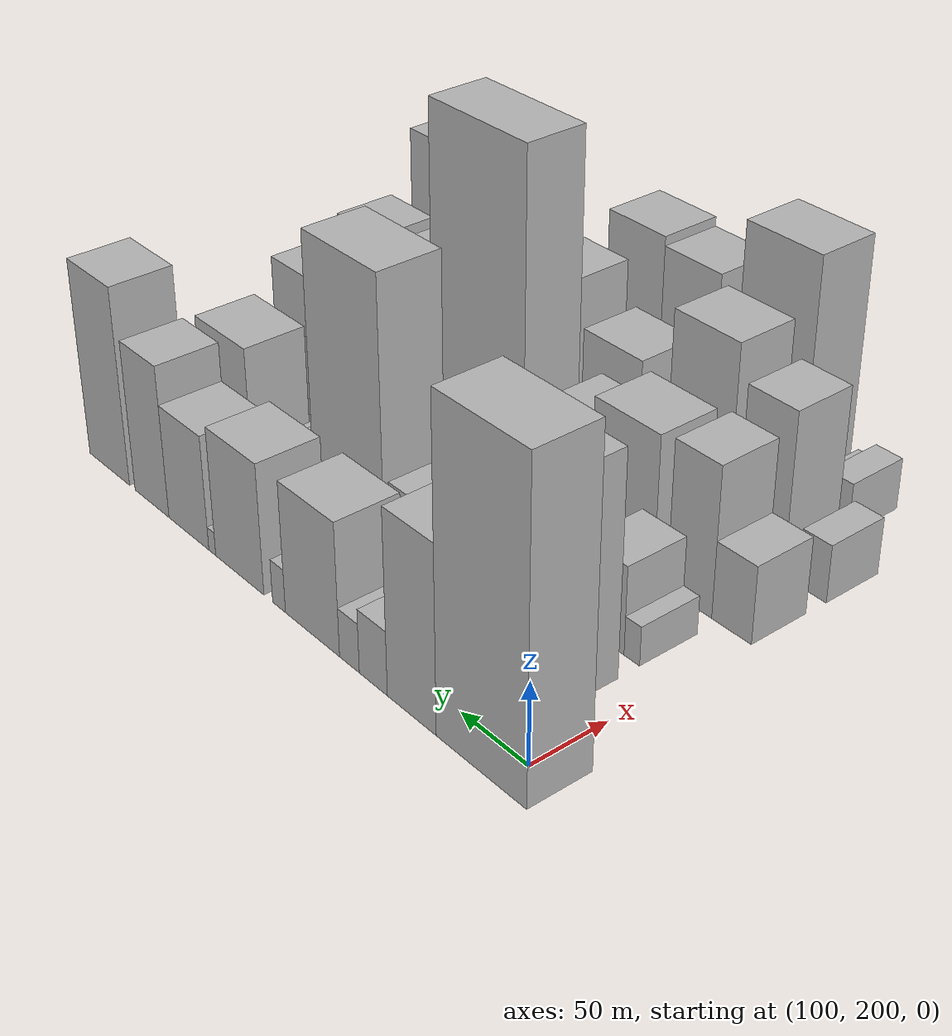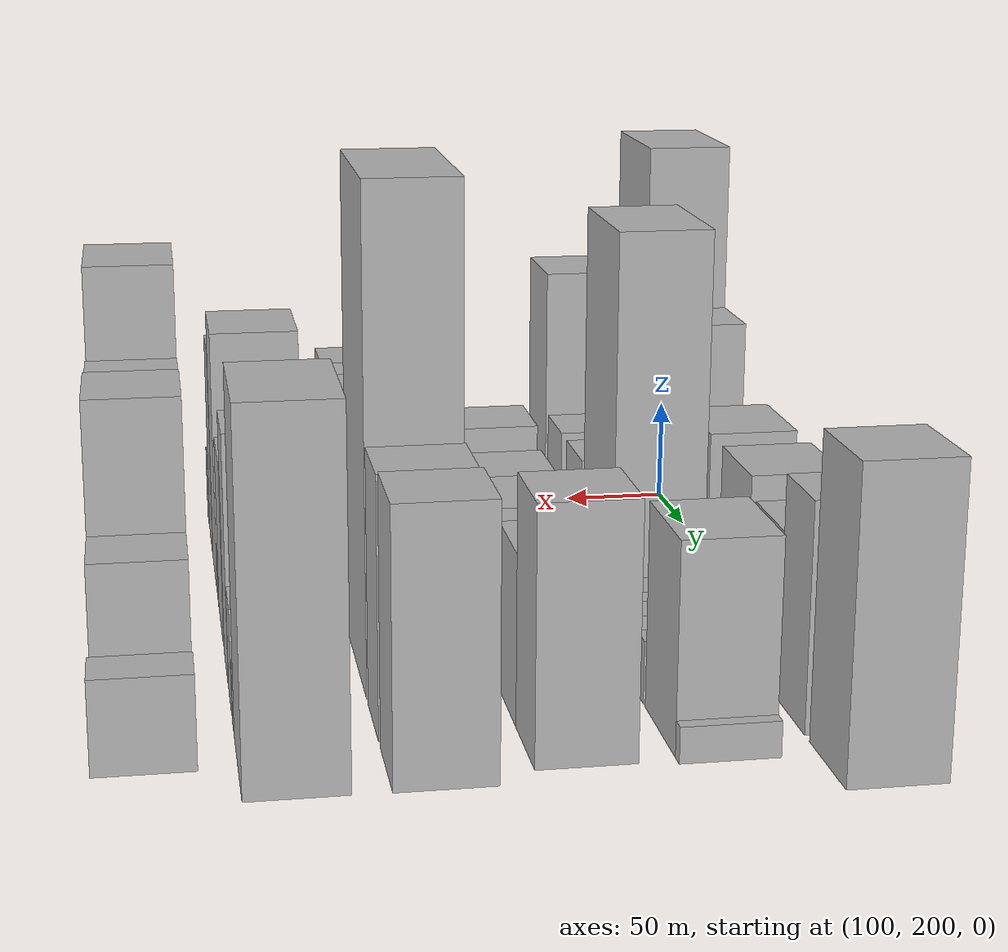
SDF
<sdf version="1.6">
 <world name="default">
  <model name="building_28">
   <static>1</static>
   <pose>100.0000 211.1221 0 0.000000 0.000000 0.000000</pose>
   <link name="link">
    <pose>0 0 96.00 0 0 0</pose>
    <collision name="collision"><geometry><box><size>40.0000 65.5950 192.0000</size></box></geometry></collision>
    <visual name="visual">
     <cast_shadows>0</cast_shadows>
     <geometry><box><size>40.0000 65.5950 192.0000</size></box></geometry>
     <material>
      <script>
       <uri>model://HANNAS_wall/materials/scripts</uri>
       <uri>model://HANNAS_wall/materials/textures</uri>
       <name>vrc/HANNAS_wall</name>
      </script>
     </material>
    </visual>
   </link>
  </model>
  <model name="building_29">
   <static>1</static>
   <pose>100.0000 262.9769 0 0.000000 0.000000 0.000000</pose>
   <link name="link">
    <pose>0 0 55.50 0 0 0</pose>
    <collision name="collision"><geometry><box><size>40.0000 38.1147 111.0000</size></box></geometry></collision>
    <visual name="visual">
     <cast_shadows>0</cast_shadows>
     <geometry><box><size>40.0000 38.1147 111.0000</size></box></geometry>
     <material>
      <script>
       <uri>model://HANNAS_wall/materials/scripts</uri>
       <uri>model://HANNAS_wall/materials/textures</uri>
       <name>vrc/HANNAS_wall</name>
      </script>
     </material>
    </visual>
   </link>
  </model>
  <model name="building_30">
   <static>1</static>
   <pose>100.0000 293.4350 0 0.000000 0.000000 0.000000</pose>
   <link name="link">
    <pose>0 0 19.50 0 0 0</pose>
    <collision name="collision"><geometry><box><size>40.0000 22.8015 39.0000</size></box></geometry></collision>
    <visual name="visual">
     <cast_shadows>0</cast_shadows>
     <geometry><box><size>40.0000 22.8015 39.0000</size></box></geometry>
     <material>
      <script>
       <uri>model://HANNAS_wall/materials/scripts</uri>
       <uri>model://HANNAS_wall/materials/textures</uri>
       <name>vrc/HANNAS_wall</name>
      </script>
     </material>
    </visual>
   </link>
  </model>
  <model name="building_31">
   <static>1</static>
   <pose>100.0000 313.0862 0 0.000000 0.000000 0.000000</pose>
   <link name="link">
    <pose>0 0 15.00 0 0 0</pose>
    <collision name="collision"><geometry><box><size>40.0000 16.5010 30.0000</size></box></geometry></collision>
    <visual name="visual">
     <cast_shadows>0</cast_shadows>
     <geometry><box><size>40.0000 16.5010 30.0000</size></box></geometry>
     <material>
      <script>
       <uri>model://HANNAS_wall/materials/scripts</uri>
       <uri>model://HANNAS_wall/materials/textures</uri>
       <name>vrc/HANNAS_wall</name>
      </script>
     </material>
    </visual>
   </link>
  </model>
  <model name="building_32">
   <static>1</static>
   <pose>100.0000 344.8873 0 0.000000 0.000000 0.000000</pose>
   <link name="link">
    <pose>0 0 40.50 0 0 0</pose>
    <collision name="collision"><geometry><box><size>40.0000 47.1013 81.0000</size></box></geometry></collision>
    <visual name="visual">
     <cast_shadows>0</cast_shadows>
     <geometry><box><size>40.0000 47.1013 81.0000</size></box></geometry>
     <material>
      <script>
       <uri>model://HANNAS_wall/materials/scripts</uri>
       <uri>model://HANNAS_wall/materials/textures</uri>
       <name>vrc/HANNAS_wall</name>
      </script>
     </material>
    </visual>
   </link>
  </model>
  <model name="building_33">
   <static>1</static>
   <pose>100.0000 374.2250 0 0.000000 0.000000 0.000000</pose>
   <link name="link">
    <pose>0 0 13.50 0 0 0</pose>
    <collision name="collision"><geometry><box><size>40.0000 11.5741 27.0000</size></box></geometry></collision>
    <visual name="visual">
     <cast_shadows>0</cast_shadows>
     <geometry><box><size>40.0000 11.5741 27.0000</size></box></geometry>
     <material>
      <script>
       <uri>model://HANNAS_wall/materials/scripts</uri>
       <uri>model://HANNAS_wall/materials/textures</uri>
       <name>vrc/HANNAS_wall</name>
      </script>
     </material>
    </visual>
   </link>
  </model>
  <model name="building_34">
   <static>1</static>
   <pose>100.0000 410.7948 0 0.000000 0.000000 0.000000</pose>
   <link name="link">
    <pose>0 0 40.50 0 0 0</pose>
    <collision name="collision"><geometry><box><size>40.0000 45.5656 81.0000</size></box></geometry></collision>
    <visual name="visual">
     <cast_shadows>0</cast_shadows>
     <geometry><box><size>40.0000 45.5656 81.0000</size></box></geometry>
     <material>
      <script>
       <uri>model://HANNAS_wall/materials/scripts</uri>
       <uri>model://HANNAS_wall/materials/textures</uri>
       <name>vrc/HANNAS_wall</name>
      </script>
     </material>
    </visual>
   </link>
  </model>
  <model name="building_35">
   <static>1</static>
   <pose>100.0000 436.9361 0 0.000000 0.000000 0.000000</pose>
   <link name="link">
    <pose>0 0 7.50 0 0 0</pose>
    <collision name="collision"><geometry><box><size>40.0000 6.7169 15.0000</size></box></geometry></collision>
    <visual name="visual">
     <cast_shadows>0</cast_shadows>
     <geometry><box><size>40.0000 6.7169 15.0000</size></box></geometry>
     <material>
      <script>
       <uri>model://HANNAS_wall/materials/scripts</uri>
       <uri>model://HANNAS_wall/materials/textures</uri>
       <name>vrc/HANNAS_wall</name>
      </script>
     </material>
    </visual>
   </link>
  </model>
  <model name="building_36">
   <static>1</static>
   <pose>100.0000 460.3819 0 0.000000 0.000000 0.000000</pose>
   <link name="link">
    <pose>0 0 36.00 0 0 0</pose>
    <collision name="collision"><geometry><box><size>40.0000 40.1748 72.0000</size></box></geometry></collision>
    <visual name="visual">
     <cast_shadows>0</cast_shadows>
     <geometry><box><size>40.0000 40.1748 72.0000</size></box></geometry>
     <material>
      <script>
       <uri>model://HANNAS_wall/materials/scripts</uri>
       <uri>model://HANNAS_wall/materials/textures</uri>
       <name>vrc/HANNAS_wall</name>
      </script>
     </material>
    </visual>
   </link>
  </model>
  <model name="building_37">
   <static>1</static>
   <pose>100.0000 498.3153 0 0.000000 0.000000 0.000000</pose>
   <link name="link">
    <pose>0 0 48.00 0 0 0</pose>
    <collision name="collision"><geometry><box><size>40.0000 35.6922 96.0000</size></box></geometry></collision>
    <visual name="visual">
     <cast_shadows>0</cast_shadows>
     <geometry><box><size>40.0000 35.6922 96.0000</size></box></geometry>
     <material>
      <script>
       <uri>model://HANNAS_wall/materials/scripts</uri>
       <uri>model://HANNAS_wall/materials/textures</uri>
       <name>vrc/HANNAS_wall</name>
      </script>
     </material>
    </visual>
   </link>
  </model>
  <model name="building_38">
   <static>1</static>
   <pose>100.0000 544.0943 0 0.000000 0.000000 0.000000</pose>
   <link name="link">
    <pose>0 0 63.00 0 0 0</pose>
    <collision name="collision"><geometry><box><size>40.0000 43.8658 126.0000</size></box></geometry></collision>
    <visual name="visual">
     <cast_shadows>0</cast_shadows>
     <geometry><box><size>40.0000 43.8658 126.0000</size></box></geometry>
     <material>
      <script>
       <uri>model://HANNAS_wall/materials/scripts</uri>
       <uri>model://HANNAS_wall/materials/textures</uri>
       <name>vrc/HANNAS_wall</name>
      </script>
     </material>
    </visual>
   </link>
  </model>
  <model name="building_78">
   <static>1</static>
   <pose>155.0000 242.6179 0 0.000000 0.000000 0.000000</pose>
   <link name="link">
    <pose>0 0 67.50 0 0 0</pose>
    <collision name="collision"><geometry><box><size>40.0000 44.5544 135.0000</size></box></geometry></collision>
    <visual name="visual">
     <cast_shadows>0</cast_shadows>
     <geometry><box><size>40.0000 44.5544 135.0000</size></box></geometry>
     <material>
      <script>
       <uri>model://HANNAS_wall/materials/scripts</uri>
       <uri>model://HANNAS_wall/materials/textures</uri>
       <name>vrc/HANNAS_wall</name>
      </script>
     </material>
    </visual>
   </link>
  </model>
  <model name="building_79">
   <static>1</static>
   <pose>155.0000 287.6054 0 0.000000 0.000000 0.000000</pose>
   <link name="link">
    <pose>0 0 33.00 0 0 0</pose>
    <collision name="collision"><geometry><box><size>40.0000 33.4206 66.0000</size></box></geometry></collision>
    <visual name="visual">
     <cast_shadows>0</cast_shadows>
     <geometry><box><size>40.0000 33.4206 66.0000</size></box></geometry>
     <material>
      <script>
       <uri>model://HANNAS_wall/materials/scripts</uri>
       <uri>model://HANNAS_wall/materials/textures</uri>
       <name>vrc/HANNAS_wall</name>
      </script>
     </material>
    </visual>
   </link>
  </model>
  <model name="building_80">
   <static>1</static>
   <pose>155.0000 311.9925 0 0.000000 0.000000 0.000000</pose>
   <link name="link">
    <pose>0 0 10.50 0 0 0</pose>
    <collision name="collision"><geometry><box><size>40.0000 9.3537 21.0000</size></box></geometry></collision>
    <visual name="visual">
     <cast_shadows>0</cast_shadows>
     <geometry><box><size>40.0000 9.3537 21.0000</size></box></geometry>
     <material>
      <script>
       <uri>model://HANNAS_wall/materials/scripts</uri>
       <uri>model://HANNAS_wall/materials/textures</uri>
       <name>vrc/HANNAS_wall</name>
      </script>
     </material>
    </visual>
   </link>
  </model>
  <model name="building_81">
   <static>1</static>
   <pose>155.0000 333.8412 0 0.000000 0.000000 0.000000</pose>
   <link name="link">
    <pose>0 0 33.00 0 0 0</pose>
    <collision name="collision"><geometry><box><size>40.0000 34.3437 66.0000</size></box></geometry></collision>
    <visual name="visual">
     <cast_shadows>0</cast_shadows>
     <geometry><box><size>40.0000 34.3437 66.0000</size></box></geometry>
     <material>
      <script>
       <uri>model://HANNAS_wall/materials/scripts</uri>
       <uri>model://HANNAS_wall/materials/textures</uri>
       <name>vrc/HANNAS_wall</name>
      </script>
     </material>
    </visual>
   </link>
  </model>
  <model name="building_82">
   <static>1</static>
   <pose>155.0000 387.0578 0 0.000000 0.000000 0.000000</pose>
   <link name="link">
    <pose>0 0 91.50 0 0 0</pose>
    <collision name="collision"><geometry><box><size>40.0000 62.0895 183.0000</size></box></geometry></collision>
    <visual name="visual">
     <cast_shadows>0</cast_shadows>
     <geometry><box><size>40.0000 62.0895 183.0000</size></box></geometry>
     <material>
      <script>
       <uri>model://HANNAS_wall/materials/scripts</uri>
       <uri>model://HANNAS_wall/materials/textures</uri>
       <name>vrc/HANNAS_wall</name>
      </script>
     </material>
    </visual>
   </link>
  </model>
  <model name="building_83">
   <static>1</static>
   <pose>155.0000 427.3714 0 0.000000 0.000000 0.000000</pose>
   <link name="link">
    <pose>0 0 16.50 0 0 0</pose>
    <collision name="collision"><geometry><box><size>40.0000 18.5377 33.0000</size></box></geometry></collision>
    <visual name="visual">
     <cast_shadows>0</cast_shadows>
     <geometry><box><size>40.0000 18.5377 33.0000</size></box></geometry>
     <material>
      <script>
       <uri>model://HANNAS_wall/materials/scripts</uri>
       <uri>model://HANNAS_wall/materials/textures</uri>
       <name>vrc/HANNAS_wall</name>
      </script>
     </material>
    </visual>
   </link>
  </model>
  <model name="building_84">
   <static>1</static>
   <pose>155.0000 455.3197 0 0.000000 0.000000 0.000000</pose>
   <link name="link">
    <pose>0 0 16.50 0 0 0</pose>
    <collision name="collision"><geometry><box><size>40.0000 17.3588 33.0000</size></box></geometry></collision>
    <visual name="visual">
     <cast_shadows>0</cast_shadows>
     <geometry><box><size>40.0000 17.3588 33.0000</size></box></geometry>
     <material>
      <script>
       <uri>model://HANNAS_wall/materials/scripts</uri>
       <uri>model://HANNAS_wall/materials/textures</uri>
       <name>vrc/HANNAS_wall</name>
      </script>
     </material>
    </visual>
   </link>
  </model>
  <model name="building_85">
   <static>1</static>
   <pose>155.0000 470.2875 0 0.000000 0.000000 0.000000</pose>
   <link name="link">
    <pose>0 0 13.50 0 0 0</pose>
    <collision name="collision"><geometry><box><size>40.0000 12.5769 27.0000</size></box></geometry></collision>
    <visual name="visual">
     <cast_shadows>0</cast_shadows>
     <geometry><box><size>40.0000 12.5769 27.0000</size></box></geometry>
     <material>
      <script>
       <uri>model://HANNAS_wall/materials/scripts</uri>
       <uri>model://HANNAS_wall/materials/textures</uri>
       <name>vrc/HANNAS_wall</name>
      </script>
     </material>
    </visual>
   </link>
  </model>
  <model name="building_86">
   <static>1</static>
   <pose>155.0000 504.1229 0 0.000000 0.000000 0.000000</pose>
   <link name="link">
    <pose>0 0 43.50 0 0 0</pose>
    <collision name="collision"><geometry><box><size>40.0000 49.0937 87.0000</size></box></geometry></collision>
    <visual name="visual">
     <cast_shadows>0</cast_shadows>
     <geometry><box><size>40.0000 49.0937 87.0000</size></box></geometry>
     <material>
      <script>
       <uri>model://HANNAS_wall/materials/scripts</uri>
       <uri>model://HANNAS_wall/materials/textures</uri>
       <name>vrc/HANNAS_wall</name>
      </script>
     </material>
    </visual>
   </link>
  </model>
  <model name="building_87">
   <static>1</static>
   <pose>155.0000 531.7247 0 0.000000 0.000000 0.000000</pose>
   <link name="link">
    <pose>0 0 7.50 0 0 0</pose>
    <collision name="collision"><geometry><box><size>40.0000 6.1100 15.0000</size></box></geometry></collision>
    <visual name="visual">
     <cast_shadows>0</cast_shadows>
     <geometry><box><size>40.0000 6.1100 15.0000</size></box></geometry>
     <material>
      <script>
       <uri>model://HANNAS_wall/materials/scripts</uri>
       <uri>model://HANNAS_wall/materials/textures</uri>
       <name>vrc/HANNAS_wall</name>
      </script>
     </material>
    </visual>
   </link>
  </model>
  <model name="building_132">
   <static>1</static>
   <pose>210.0000 226.4200 0 0.000000 0.000000 0.000000</pose>
   <link name="link">
    <pose>0 0 12.00 0 0 0</pose>
    <collision name="collision"><geometry><box><size>40.0000 11.3285 24.0000</size></box></geometry></collision>
    <visual name="visual">
     <cast_shadows>0</cast_shadows>
     <geometry><box><size>40.0000 11.3285 24.0000</size></box></geometry>
     <material>
      <script>
       <uri>model://HANNAS_wall/materials/scripts</uri>
       <uri>model://HANNAS_wall/materials/textures</uri>
       <name>vrc/HANNAS_wall</name>
      </script>
     </material>
    </visual>
   </link>
  </model>
  <model name="building_133">
   <static>1</static>
   <pose>210.0000 247.9528 0 0.000000 0.000000 0.000000</pose>
   <link name="link">
    <pose>0 0 27.00 0 0 0</pose>
    <collision name="collision"><geometry><box><size>40.0000 31.7370 54.0000</size></box></geometry></collision>
    <visual name="visual">
     <cast_shadows>0</cast_shadows>
     <geometry><box><size>40.0000 31.7370 54.0000</size></box></geometry>
     <material>
      <script>
       <uri>model://HANNAS_wall/materials/scripts</uri>
       <uri>model://HANNAS_wall/materials/textures</uri>
       <name>vrc/HANNAS_wall</name>
      </script>
     </material>
    </visual>
   </link>
  </model>
  <model name="building_134">
   <static>1</static>
   <pose>210.0000 273.6645 0 0.000000 0.000000 0.000000</pose>
   <link name="link">
    <pose>0 0 16.50 0 0 0</pose>
    <collision name="collision"><geometry><box><size>40.0000 19.6864 33.0000</size></box></geometry></collision>
    <visual name="visual">
     <cast_shadows>0</cast_shadows>
     <geometry><box><size>40.0000 19.6864 33.0000</size></box></geometry>
     <material>
      <script>
       <uri>model://HANNAS_wall/materials/scripts</uri>
       <uri>model://HANNAS_wall/materials/textures</uri>
       <name>vrc/HANNAS_wall</name>
      </script>
     </material>
    </visual>
   </link>
  </model>
  <model name="building_135">
   <static>1</static>
   <pose>210.0000 302.5723 0 0.000000 0.000000 0.000000</pose>
   <link name="link">
    <pose>0 0 37.50 0 0 0</pose>
    <collision name="collision"><geometry><box><size>40.0000 38.1293 75.0000</size></box></geometry></collision>
    <visual name="visual">
     <cast_shadows>0</cast_shadows>
     <geometry><box><size>40.0000 38.1293 75.0000</size></box></geometry>
     <material>
      <script>
       <uri>model://HANNAS_wall/materials/scripts</uri>
       <uri>model://HANNAS_wall/materials/textures</uri>
       <name>vrc/HANNAS_wall</name>
      </script>
     </material>
    </visual>
   </link>
  </model>
  <model name="building_136">
   <static>1</static>
   <pose>210.0000 350.0573 0 0.000000 0.000000 0.000000</pose>
   <link name="link">
    <pose>0 0 33.00 0 0 0</pose>
    <collision name="collision"><geometry><box><size>40.0000 38.8407 66.0000</size></box></geometry></collision>
    <visual name="visual">
     <cast_shadows>0</cast_shadows>
     <geometry><box><size>40.0000 38.8407 66.0000</size></box></geometry>
     <material>
      <script>
       <uri>model://HANNAS_wall/materials/scripts</uri>
       <uri>model://HANNAS_wall/materials/textures</uri>
       <name>vrc/HANNAS_wall</name>
      </script>
     </material>
    </visual>
   </link>
  </model>
  <model name="building_137">
   <static>1</static>
   <pose>210.0000 392.8397 0 0.000000 0.000000 0.000000</pose>
   <link name="link">
    <pose>0 0 27.00 0 0 0</pose>
    <collision name="collision"><geometry><box><size>40.0000 28.7243 54.0000</size></box></geometry></collision>
    <visual name="visual">
     <cast_shadows>0</cast_shadows>
     <geometry><box><size>40.0000 28.7243 54.0000</size></box></geometry>
     <material>
      <script>
       <uri>model://HANNAS_wall/materials/scripts</uri>
       <uri>model://HANNAS_wall/materials/textures</uri>
       <name>vrc/HANNAS_wall</name>
      </script>
     </material>
    </visual>
   </link>
  </model>
  <model name="building_138">
   <static>1</static>
   <pose>210.0000 410.2564 0 0.000000 0.000000 0.000000</pose>
   <link name="link">
    <pose>0 0 7.50 0 0 0</pose>
    <collision name="collision"><geometry><box><size>40.0000 6.1091 15.0000</size></box></geometry></collision>
    <visual name="visual">
     <cast_shadows>0</cast_shadows>
     <geometry><box><size>40.0000 6.1091 15.0000</size></box></geometry>
     <material>
      <script>
       <uri>model://HANNAS_wall/materials/scripts</uri>
       <uri>model://HANNAS_wall/materials/textures</uri>
       <name>vrc/HANNAS_wall</name>
      </script>
     </material>
    </visual>
   </link>
  </model>
  <model name="building_139">
   <static>1</static>
   <pose>210.0000 427.1745 0 0.000000 0.000000 0.000000</pose>
   <link name="link">
    <pose>0 0 24.00 0 0 0</pose>
    <collision name="collision"><geometry><box><size>40.0000 27.7270 48.0000</size></box></geometry></collision>
    <visual name="visual">
     <cast_shadows>0</cast_shadows>
     <geometry><box><size>40.0000 27.7270 48.0000</size></box></geometry>
     <material>
      <script>
       <uri>model://HANNAS_wall/materials/scripts</uri>
       <uri>model://HANNAS_wall/materials/textures</uri>
       <name>vrc/HANNAS_wall</name>
      </script>
     </material>
    </visual>
   </link>
  </model>
  <model name="building_140">
   <static>1</static>
   <pose>210.0000 445.7122 0 0.000000 0.000000 0.000000</pose>
   <link name="link">
    <pose>0 0 10.50 0 0 0</pose>
    <collision name="collision"><geometry><box><size>40.0000 9.3484 21.0000</size></box></geometry></collision>
    <visual name="visual">
     <cast_shadows>0</cast_shadows>
     <geometry><box><size>40.0000 9.3484 21.0000</size></box></geometry>
     <material>
      <script>
       <uri>model://HANNAS_wall/materials/scripts</uri>
       <uri>model://HANNAS_wall/materials/textures</uri>
       <name>vrc/HANNAS_wall</name>
      </script>
     </material>
    </visual>
   </link>
  </model>
  <model name="building_141">
   <static>1</static>
   <pose>210.0000 471.0265 0 0.000000 0.000000 0.000000</pose>
   <link name="link">
    <pose>0 0 36.00 0 0 0</pose>
    <collision name="collision"><geometry><box><size>40.0000 41.2801 72.0000</size></box></geometry></collision>
    <visual name="visual">
     <cast_shadows>0</cast_shadows>
     <geometry><box><size>40.0000 41.2801 72.0000</size></box></geometry>
     <material>
      <script>
       <uri>model://HANNAS_wall/materials/scripts</uri>
       <uri>model://HANNAS_wall/materials/textures</uri>
       <name>vrc/HANNAS_wall</name>
      </script>
     </material>
    </visual>
   </link>
  </model>
  <model name="building_142">
   <static>1</static>
   <pose>210.0000 511.8032 0 0.000000 0.000000 0.000000</pose>
   <link name="link">
    <pose>0 0 52.50 0 0 0</pose>
    <collision name="collision"><geometry><box><size>40.0000 40.2734 105.0000</size></box></geometry></collision>
    <visual name="visual">
     <cast_shadows>0</cast_shadows>
     <geometry><box><size>40.0000 40.2734 105.0000</size></box></geometry>
     <material>
      <script>
       <uri>model://HANNAS_wall/materials/scripts</uri>
       <uri>model://HANNAS_wall/materials/textures</uri>
       <name>vrc/HANNAS_wall</name>
      </script>
     </material>
    </visual>
   </link>
  </model>
  <model name="building_184">
   <static>1</static>
   <pose>265.0000 211.4178 0 0.000000 0.000000 0.000000</pose>
   <link name="link">
    <pose>0 0 24.00 0 0 0</pose>
    <collision name="collision"><geometry><box><size>40.0000 28.0167 48.0000</size></box></geometry></collision>
    <visual name="visual">
     <cast_shadows>0</cast_shadows>
     <geometry><box><size>40.0000 28.0167 48.0000</size></box></geometry>
     <material>
      <script>
       <uri>model://HANNAS_wall/materials/scripts</uri>
       <uri>model://HANNAS_wall/materials/textures</uri>
       <name>vrc/HANNAS_wall</name>
      </script>
     </material>
    </visual>
   </link>
  </model>
  <model name="building_185">
   <static>1</static>
   <pose>265.0000 241.8410 0 0.000000 0.000000 0.000000</pose>
   <link name="link">
    <pose>0 0 46.50 0 0 0</pose>
    <collision name="collision"><geometry><box><size>40.0000 32.8297 93.0000</size></box></geometry></collision>
    <visual name="visual">
     <cast_shadows>0</cast_shadows>
     <geometry><box><size>40.0000 32.8297 93.0000</size></box></geometry>
     <material>
      <script>
       <uri>model://HANNAS_wall/materials/scripts</uri>
       <uri>model://HANNAS_wall/materials/textures</uri>
       <name>vrc/HANNAS_wall</name>
      </script>
     </material>
    </visual>
   </link>
  </model>
  <model name="building_186">
   <static>1</static>
   <pose>265.0000 292.9318 0 0.000000 0.000000 0.000000</pose>
   <link name="link">
    <pose>0 0 45.00 0 0 0</pose>
    <collision name="collision"><geometry><box><size>40.0000 49.3520 90.0000</size></box></geometry></collision>
    <visual name="visual">
     <cast_shadows>0</cast_shadows>
     <geometry><box><size>40.0000 49.3520 90.0000</size></box></geometry>
     <material>
      <script>
       <uri>model://HANNAS_wall/materials/scripts</uri>
       <uri>model://HANNAS_wall/materials/textures</uri>
       <name>vrc/HANNAS_wall</name>
      </script>
     </material>
    </visual>
   </link>
  </model>
  <model name="building_187">
   <static>1</static>
   <pose>265.0000 336.3227 0 0.000000 0.000000 0.000000</pose>
   <link name="link">
    <pose>0 0 36.00 0 0 0</pose>
    <collision name="collision"><geometry><box><size>40.0000 37.4298 72.0000</size></box></geometry></collision>
    <visual name="visual">
     <cast_shadows>0</cast_shadows>
     <geometry><box><size>40.0000 37.4298 72.0000</size></box></geometry>
     <material>
      <script>
       <uri>model://HANNAS_wall/materials/scripts</uri>
       <uri>model://HANNAS_wall/materials/textures</uri>
       <name>vrc/HANNAS_wall</name>
      </script>
     </material>
    </visual>
   </link>
  </model>
  <model name="building_188">
   <static>1</static>
   <pose>265.0000 362.3041 0 0.000000 0.000000 0.000000</pose>
   <link name="link">
    <pose>0 0 10.50 0 0 0</pose>
    <collision name="collision"><geometry><box><size>40.0000 8.5330 21.0000</size></box></geometry></collision>
    <visual name="visual">
     <cast_shadows>0</cast_shadows>
     <geometry><box><size>40.0000 8.5330 21.0000</size></box></geometry>
     <material>
      <script>
       <uri>model://HANNAS_wall/materials/scripts</uri>
       <uri>model://HANNAS_wall/materials/textures</uri>
       <name>vrc/HANNAS_wall</name>
      </script>
     </material>
    </visual>
   </link>
  </model>
  <model name="building_189">
   <static>1</static>
   <pose>265.0000 414.0832 0 0.000000 0.000000 0.000000</pose>
   <link name="link">
    <pose>0 0 106.50 0 0 0</pose>
    <collision name="collision"><geometry><box><size>40.0000 81.0252 213.0000</size></box></geometry></collision>
    <visual name="visual">
     <cast_shadows>0</cast_shadows>
     <geometry><box><size>40.0000 81.0252 213.0000</size></box></geometry>
     <material>
      <script>
       <uri>model://HANNAS_wall/materials/scripts</uri>
       <uri>model://HANNAS_wall/materials/textures</uri>
       <name>vrc/HANNAS_wall</name>
      </script>
     </material>
    </visual>
   </link>
  </model>
  <model name="building_190">
   <static>1</static>
   <pose>265.0000 478.4725 0 0.000000 0.000000 0.000000</pose>
   <link name="link">
    <pose>0 0 54.00 0 0 0</pose>
    <collision name="collision"><geometry><box><size>40.0000 37.7533 108.0000</size></box></geometry></collision>
    <visual name="visual">
     <cast_shadows>0</cast_shadows>
     <geometry><box><size>40.0000 37.7533 108.0000</size></box></geometry>
     <material>
      <script>
       <uri>model://HANNAS_wall/materials/scripts</uri>
       <uri>model://HANNAS_wall/materials/textures</uri>
       <name>vrc/HANNAS_wall</name>
      </script>
     </material>
    </visual>
   </link>
  </model>
  <model name="building_191">
   <static>1</static>
   <pose>265.0000 523.3664 0 0.000000 0.000000 0.000000</pose>
   <link name="link">
    <pose>0 0 55.50 0 0 0</pose>
    <collision name="collision"><geometry><box><size>40.0000 40.0345 111.0000</size></box></geometry></collision>
    <visual name="visual">
     <cast_shadows>0</cast_shadows>
     <geometry><box><size>40.0000 40.0345 111.0000</size></box></geometry>
     <material>
      <script>
       <uri>model://HANNAS_wall/materials/scripts</uri>
       <uri>model://HANNAS_wall/materials/textures</uri>
       <name>vrc/HANNAS_wall</name>
      </script>
     </material>
    </visual>
   </link>
  </model>
  <model name="building_232">
   <static>1</static>
   <pose>320.0000 206.9318 0 0.000000 0.000000 0.000000</pose>
   <link name="link">
    <pose>0 0 18.00 0 0 0</pose>
    <collision name="collision"><geometry><box><size>40.0000 19.9654 36.0000</size></box></geometry></collision>
    <visual name="visual">
     <cast_shadows>0</cast_shadows>
     <geometry><box><size>40.0000 19.9654 36.0000</size></box></geometry>
     <material>
      <script>
       <uri>model://HANNAS_wall/materials/scripts</uri>
       <uri>model://HANNAS_wall/materials/textures</uri>
       <name>vrc/HANNAS_wall</name>
      </script>
     </material>
    </visual>
   </link>
  </model>
  <model name="building_233">
   <static>1</static>
   <pose>320.0000 244.4183 0 0.000000 0.000000 0.000000</pose>
   <link name="link">
    <pose>0 0 51.00 0 0 0</pose>
    <collision name="collision"><geometry><box><size>40.0000 35.0077 102.0000</size></box></geometry></collision>
    <visual name="visual">
     <cast_shadows>0</cast_shadows>
     <geometry><box><size>40.0000 35.0077 102.0000</size></box></geometry>
     <material>
      <script>
       <uri>model://HANNAS_wall/materials/scripts</uri>
       <uri>model://HANNAS_wall/materials/textures</uri>
       <name>vrc/HANNAS_wall</name>
      </script>
     </material>
    </visual>
   </link>
  </model>
  <model name="building_234">
   <static>1</static>
   <pose>320.0000 293.0955 0 0.000000 0.000000 0.000000</pose>
   <link name="link">
    <pose>0 0 61.50 0 0 0</pose>
    <collision name="collision"><geometry><box><size>40.0000 48.3465 123.0000</size></box></geometry></collision>
    <visual name="visual">
     <cast_shadows>0</cast_shadows>
     <geometry><box><size>40.0000 48.3465 123.0000</size></box></geometry>
     <material>
      <script>
       <uri>model://HANNAS_wall/materials/scripts</uri>
       <uri>model://HANNAS_wall/materials/textures</uri>
       <name>vrc/HANNAS_wall</name>
      </script>
     </material>
    </visual>
   </link>
  </model>
  <model name="building_235">
   <static>1</static>
   <pose>320.0000 332.7790 0 0.000000 0.000000 0.000000</pose>
   <link name="link">
    <pose>0 0 13.50 0 0 0</pose>
    <collision name="collision"><geometry><box><size>40.0000 13.0205 27.0000</size></box></geometry></collision>
    <visual name="visual">
     <cast_shadows>0</cast_shadows>
     <geometry><box><size>40.0000 13.0205 27.0000</size></box></geometry>
     <material>
      <script>
       <uri>model://HANNAS_wall/materials/scripts</uri>
       <uri>model://HANNAS_wall/materials/textures</uri>
       <name>vrc/HANNAS_wall</name>
      </script>
     </material>
    </visual>
   </link>
  </model>
  <model name="building_236">
   <static>1</static>
   <pose>320.0000 363.0589 0 0.000000 0.000000 0.000000</pose>
   <link name="link">
    <pose>0 0 40.50 0 0 0</pose>
    <collision name="collision"><geometry><box><size>40.0000 47.5394 81.0000</size></box></geometry></collision>
    <visual name="visual">
     <cast_shadows>0</cast_shadows>
     <geometry><box><size>40.0000 47.5394 81.0000</size></box></geometry>
     <material>
      <script>
       <uri>model://HANNAS_wall/materials/scripts</uri>
       <uri>model://HANNAS_wall/materials/textures</uri>
       <name>vrc/HANNAS_wall</name>
      </script>
     </material>
    </visual>
   </link>
  </model>
  <model name="building_237">
   <static>1</static>
   <pose>320.0000 413.1261 0 0.000000 0.000000 0.000000</pose>
   <link name="link">
    <pose>0 0 54.00 0 0 0</pose>
    <collision name="collision"><geometry><box><size>40.0000 36.5948 108.0000</size></box></geometry></collision>
    <visual name="visual">
     <cast_shadows>0</cast_shadows>
     <geometry><box><size>40.0000 36.5948 108.0000</size></box></geometry>
     <material>
      <script>
       <uri>model://HANNAS_wall/materials/scripts</uri>
       <uri>model://HANNAS_wall/materials/textures</uri>
       <name>vrc/HANNAS_wall</name>
      </script>
     </material>
    </visual>
   </link>
  </model>
  <model name="building_238">
   <static>1</static>
   <pose>320.0000 449.7886 0 0.000000 0.000000 0.000000</pose>
   <link name="link">
    <pose>0 0 22.50 0 0 0</pose>
    <collision name="collision"><geometry><box><size>40.0000 26.7303 45.0000</size></box></geometry></collision>
    <visual name="visual">
     <cast_shadows>0</cast_shadows>
     <geometry><box><size>40.0000 26.7303 45.0000</size></box></geometry>
     <material>
      <script>
       <uri>model://HANNAS_wall/materials/scripts</uri>
       <uri>model://HANNAS_wall/materials/textures</uri>
       <name>vrc/HANNAS_wall</name>
      </script>
     </material>
    </visual>
   </link>
  </model>
  <model name="building_239">
   <static>1</static>
   <pose>320.0000 476.6018 0 0.000000 0.000000 0.000000</pose>
   <link name="link">
    <pose>0 0 13.50 0 0 0</pose>
    <collision name="collision"><geometry><box><size>40.0000 12.8961 27.0000</size></box></geometry></collision>
    <visual name="visual">
     <cast_shadows>0</cast_shadows>
     <geometry><box><size>40.0000 12.8961 27.0000</size></box></geometry>
     <material>
      <script>
       <uri>model://HANNAS_wall/materials/scripts</uri>
       <uri>model://HANNAS_wall/materials/textures</uri>
       <name>vrc/HANNAS_wall</name>
      </script>
     </material>
    </visual>
   </link>
  </model>
  <model name="building_240">
   <static>1</static>
   <pose>320.0000 512.9640 0 0.000000 0.000000 0.000000</pose>
   <link name="link">
    <pose>0 0 75.00 0 0 0</pose>
    <collision name="collision"><geometry><box><size>40.0000 59.8284 150.0000</size></box></geometry></collision>
    <visual name="visual">
     <cast_shadows>0</cast_shadows>
     <geometry><box><size>40.0000 59.8284 150.0000</size></box></geometry>
     <material>
      <script>
       <uri>model://HANNAS_wall/materials/scripts</uri>
       <uri>model://HANNAS_wall/materials/textures</uri>
       <name>vrc/HANNAS_wall</name>
      </script>
     </material>
    </visual>
   </link>
  </model>
  <model name="building_277">
   <static>1</static>
   <pose>375.0000 240.2809 0 0.000000 0.000000 0.000000</pose>
   <link name="link">
    <pose>0 0 16.50 0 0 0</pose>
    <collision name="collision"><geometry><box><size>40.0000 18.8294 33.0000</size></box></geometry></collision>
    <visual name="visual">
     <cast_shadows>0</cast_shadows>
     <geometry><box><size>40.0000 18.8294 33.0000</size></box></geometry>
     <material>
      <script>
       <uri>model://HANNAS_wall/materials/scripts</uri>
       <uri>model://HANNAS_wall/materials/textures</uri>
       <name>vrc/HANNAS_wall</name>
      </script>
     </material>
    </visual>
   </link>
  </model>
  <model name="building_278">
   <static>1</static>
   <pose>375.0000 255.6750 0 0.000000 0.000000 0.000000</pose>
   <link name="link">
    <pose>0 0 12.00 0 0 0</pose>
    <collision name="collision"><geometry><box><size>40.0000 11.9588 24.0000</size></box></geometry></collision>
    <visual name="visual">
     <cast_shadows>0</cast_shadows>
     <geometry><box><size>40.0000 11.9588 24.0000</size></box></geometry>
     <material>
      <script>
       <uri>model://HANNAS_wall/materials/scripts</uri>
       <uri>model://HANNAS_wall/materials/textures</uri>
       <name>vrc/HANNAS_wall</name>
      </script>
     </material>
    </visual>
   </link>
  </model>
  <model name="building_279">
   <static>1</static>
   <pose>375.0000 293.8452 0 0.000000 0.000000 0.000000</pose>
   <link name="link">
    <pose>0 0 78.00 0 0 0</pose>
    <collision name="collision"><geometry><box><size>40.0000 54.3817 156.0000</size></box></geometry></collision>
    <visual name="visual">
     <cast_shadows>0</cast_shadows>
     <geometry><box><size>40.0000 54.3817 156.0000</size></box></geometry>
     <material>
      <script>
       <uri>model://HANNAS_wall/materials/scripts</uri>
       <uri>model://HANNAS_wall/materials/textures</uri>
       <name>vrc/HANNAS_wall</name>
      </script>
     </material>
    </visual>
   </link>
  </model>
  <model name="building_280">
   <static>1</static>
   <pose>375.0000 326.6920 0 0.000000 0.000000 0.000000</pose>
   <link name="link">
    <pose>0 0 13.50 0 0 0</pose>
    <collision name="collision"><geometry><box><size>40.0000 11.3120 27.0000</size></box></geometry></collision>
    <visual name="visual">
     <cast_shadows>0</cast_shadows>
     <geometry><box><size>40.0000 11.3120 27.0000</size></box></geometry>
     <material>
      <script>
       <uri>model://HANNAS_wall/materials/scripts</uri>
       <uri>model://HANNAS_wall/materials/textures</uri>
       <name>vrc/HANNAS_wall</name>
      </script>
     </material>
    </visual>
   </link>
  </model>
  <model name="building_281">
   <static>1</static>
   <pose>375.0000 358.7070 0 0.000000 0.000000 0.000000</pose>
   <link name="link">
    <pose>0 0 58.50 0 0 0</pose>
    <collision name="collision"><geometry><box><size>40.0000 44.7180 117.0000</size></box></geometry></collision>
    <visual name="visual">
     <cast_shadows>0</cast_shadows>
     <geometry><box><size>40.0000 44.7180 117.0000</size></box></geometry>
     <material>
      <script>
       <uri>model://HANNAS_wall/materials/scripts</uri>
       <uri>model://HANNAS_wall/materials/textures</uri>
       <name>vrc/HANNAS_wall</name>
      </script>
     </material>
    </visual>
   </link>
  </model>
  <model name="building_282">
   <static>1</static>
   <pose>375.0000 404.1574 0 0.000000 0.000000 0.000000</pose>
   <link name="link">
    <pose>0 0 61.50 0 0 0</pose>
    <collision name="collision"><geometry><box><size>40.0000 46.1828 123.0000</size></box></geometry></collision>
    <visual name="visual">
     <cast_shadows>0</cast_shadows>
     <geometry><box><size>40.0000 46.1828 123.0000</size></box></geometry>
     <material>
      <script>
       <uri>model://HANNAS_wall/materials/scripts</uri>
       <uri>model://HANNAS_wall/materials/textures</uri>
       <name>vrc/HANNAS_wall</name>
      </script>
     </material>
    </visual>
   </link>
  </model>
  <model name="building_283">
   <static>1</static>
   <pose>375.0000 444.4096 0 0.000000 0.000000 0.000000</pose>
   <link name="link">
    <pose>0 0 33.00 0 0 0</pose>
    <collision name="collision"><geometry><box><size>40.0000 34.3215 66.0000</size></box></geometry></collision>
    <visual name="visual">
     <cast_shadows>0</cast_shadows>
     <geometry><box><size>40.0000 34.3215 66.0000</size></box></geometry>
     <material>
      <script>
       <uri>model://HANNAS_wall/materials/scripts</uri>
       <uri>model://HANNAS_wall/materials/textures</uri>
       <name>vrc/HANNAS_wall</name>
      </script>
     </material>
    </visual>
   </link>
  </model>
  <model name="building_284">
   <static>1</static>
   <pose>375.0000 466.5926 0 0.000000 0.000000 0.000000</pose>
   <link name="link">
    <pose>0 0 10.50 0 0 0</pose>
    <collision name="collision"><geometry><box><size>40.0000 10.0446 21.0000</size></box></geometry></collision>
    <visual name="visual">
     <cast_shadows>0</cast_shadows>
     <geometry><box><size>40.0000 10.0446 21.0000</size></box></geometry>
     <material>
      <script>
       <uri>model://HANNAS_wall/materials/scripts</uri>
       <uri>model://HANNAS_wall/materials/textures</uri>
       <name>vrc/HANNAS_wall</name>
      </script>
     </material>
    </visual>
   </link>
  </model>
  <model name="building_285">
   <static>1</static>
   <pose>375.0000 476.0915 0 0.000000 0.000000 0.000000</pose>
   <link name="link">
    <pose>0 0 10.50 0 0 0</pose>
    <collision name="collision"><geometry><box><size>40.0000 8.9531 21.0000</size></box></geometry></collision>
    <visual name="visual">
     <cast_shadows>0</cast_shadows>
     <geometry><box><size>40.0000 8.9531 21.0000</size></box></geometry>
     <material>
      <script>
       <uri>model://HANNAS_wall/materials/scripts</uri>
       <uri>model://HANNAS_wall/materials/textures</uri>
       <name>vrc/HANNAS_wall</name>
      </script>
     </material>
    </visual>
   </link>
  </model>
  <model name="building_286">
   <static>1</static>
   <pose>375.0000 485.5861 0 0.000000 0.000000 0.000000</pose>
   <link name="link">
    <pose>0 0 10.50 0 0 0</pose>
    <collision name="collision"><geometry><box><size>40.0000 10.0360 21.0000</size></box></geometry></collision>
    <visual name="visual">
     <cast_shadows>0</cast_shadows>
     <geometry><box><size>40.0000 10.0360 21.0000</size></box></geometry>
     <material>
      <script>
       <uri>model://HANNAS_wall/materials/scripts</uri>
       <uri>model://HANNAS_wall/materials/textures</uri>
       <name>vrc/HANNAS_wall</name>
      </script>
     </material>
    </visual>
   </link>
  </model>
  <model name="building_287">
   <static>1</static>
   <pose>375.0000 502.1698 0 0.000000 0.000000 0.000000</pose>
   <link name="link">
    <pose>0 0 19.50 0 0 0</pose>
    <collision name="collision"><geometry><box><size>40.0000 23.1314 39.0000</size></box></geometry></collision>
    <visual name="visual">
     <cast_shadows>0</cast_shadows>
     <geometry><box><size>40.0000 23.1314 39.0000</size></box></geometry>
     <material>
      <script>
       <uri>model://HANNAS_wall/materials/scripts</uri>
       <uri>model://HANNAS_wall/materials/textures</uri>
       <name>vrc/HANNAS_wall</name>
      </script>
     </material>
    </visual>
   </link>
  </model>
 </world>
</sdf>
